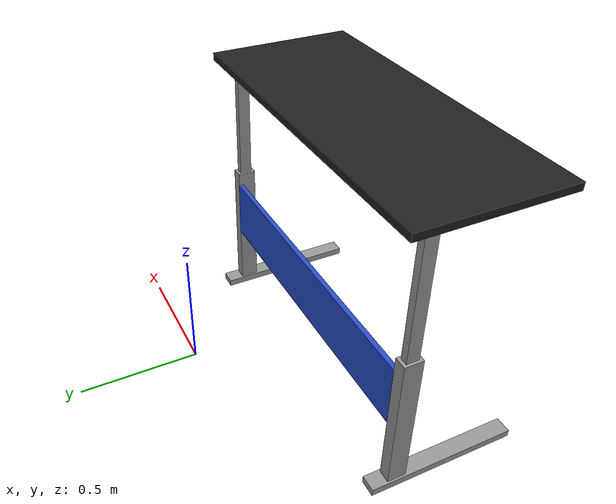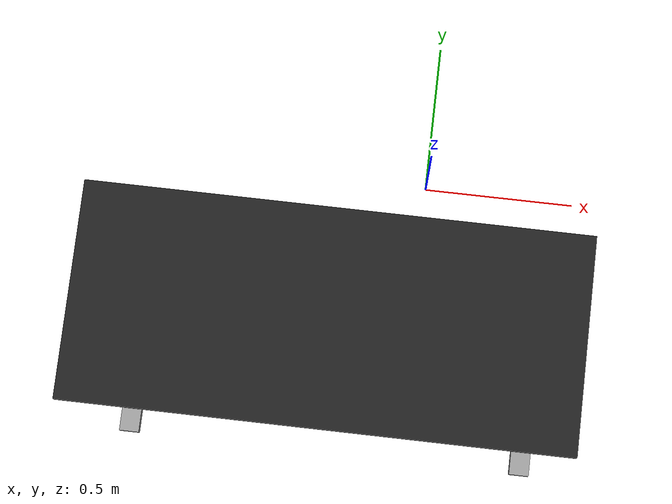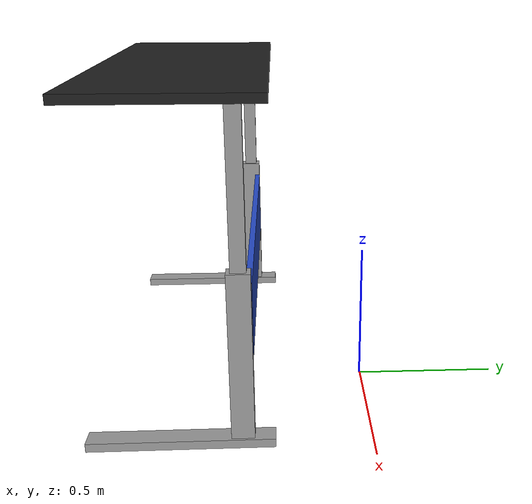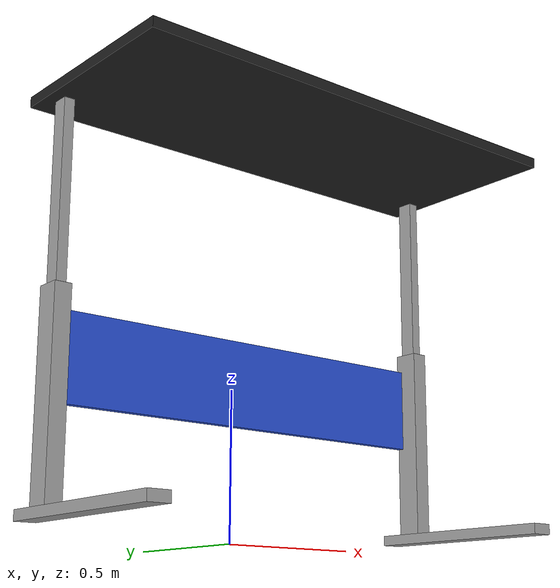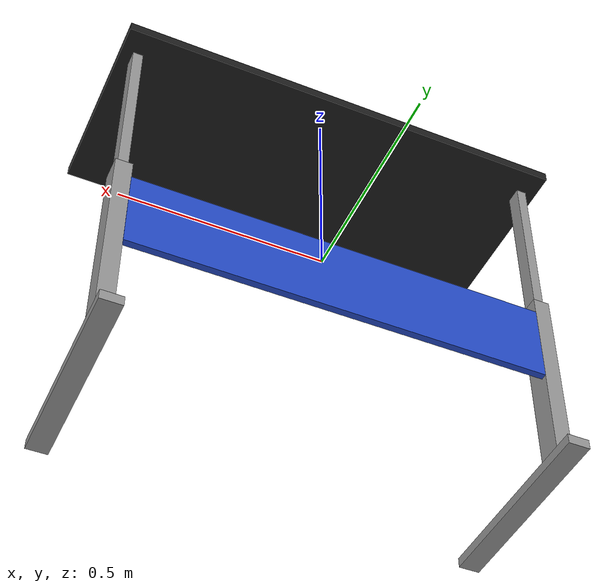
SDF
<?xml version='1.0'?>
<sdf version='1.6'>
  <model name='transcendesk'>
    <!--
    To adjust the height of the table, see note below. Also recompute inertia.
    -->
    <link name='table_base'>
      <pose frame=''>-0.243716 -0.625087 0 0 -0 0</pose>
      <inertial>
        <mass>30</mass>
        <pose frame=''>0 0 0 0 -0 0</pose>
        <inertia>
          <ixx>4.33</ixx>
          <ixy>0</ixy>
          <ixz>0</ixz>
          <iyy>8.325</iyy>
          <iyz>0</iyz>
          <izz>5.8</izz>
        </inertia>
      </inertial>
      <self_collide>0</self_collide>
      <kinematic>0</kinematic>
      <gravity>1</gravity>
      <visual name='right_crossbar'>
        <pose frame=''>0.65 0 0.01 0 -0 0</pose>
        <geometry>
          <box>
            <size>0.065 0.61 0.03</size>
          </box>
        </geometry>
        <material>
          <script>
            <uri>file://media/materials/scripts/gazebo.material</uri>
            <name>Gazebo/Grey</name>
          </script>
          <ambient>0.3 0.3 0.3 1</ambient>
          <diffuse>0.7 0.7 0.7 1</diffuse>
          <specular>0.01 0.01 0.01 1</specular>
          <emissive>0 0 0 1</emissive>
          <shader type='vertex'>
            <normal_map>__default__</normal_map>
          </shader>
        </material>
        <cast_shadows>1</cast_shadows>
        <transparency>0</transparency>
      </visual>
      <visual name='left_crossbar'>
        <pose frame=''>-0.65 0 0.01 0 -0 0</pose>
        <geometry>
          <box>
            <size>0.065 0.61 0.03</size>
          </box>
        </geometry>
        <material>
          <script>
            <uri>file://media/materials/scripts/gazebo.material</uri>
            <name>Gazebo/Grey</name>
          </script>
          <ambient>0.3 0.3 0.3 1</ambient>
          <diffuse>0.7 0.7 0.7 1</diffuse>
          <specular>0.01 0.01 0.01 1</specular>
          <emissive>0 0 0 1</emissive>
          <shader type='vertex'>
            <normal_map>__default__</normal_map>
          </shader>
        </material>
        <cast_shadows>1</cast_shadows>
        <transparency>0</transparency>
      </visual>
      <visual name='bottom_right_leg'>
        <pose frame=''>0.65 0.2 0.31 0 -0 0</pose>
        <geometry>
          <box>
            <size>0.05 0.076 0.58</size>
          </box>
        </geometry>
        <material>
          <script>
            <uri>file://media/materials/scripts/gazebo.material</uri>
            <name>Gazebo/Grey</name>
          </script>
          <ambient>0.3 0.3 0.3 1</ambient>
          <diffuse>0.7 0.7 0.7 1</diffuse>
          <specular>0.01 0.01 0.01 1</specular>
          <emissive>0 0 0 1</emissive>
          <shader type='vertex'>
            <normal_map>__default__</normal_map>
          </shader>
        </material>
        <cast_shadows>1</cast_shadows>
        <transparency>0</transparency>
      </visual>
      <visual name='leg_brace'>
        <pose frame=''>0 0.229 0.42 0 -0 0</pose>
        <geometry>
          <box>
            <size>1.25 0.02 0.25</size>
          </box>
        </geometry>
        <material>
          <script>
            <uri>file://media/materials/scripts/gazebo.material</uri>
            <name>Gazebo/Blue</name>
          </script>
          <ambient>0.3 0.3 0.3 1</ambient>
          <diffuse>0.7 0.7 0.7 1</diffuse>
          <specular>0.01 0.01 0.01 1</specular>
          <emissive>0 0 0 1</emissive>
          <shader type='vertex'>
            <normal_map>__default__</normal_map>
          </shader>
        </material>
        <cast_shadows>1</cast_shadows>
        <transparency>0</transparency>
      </visual>
      <visual name='bottom_left_leg'>
        <pose frame=''>-0.65 0.2 0.31 0 -0 0</pose>
        <geometry>
          <box>
            <size>0.05 0.076 0.58</size>
          </box>
        </geometry>
        <material>
          <script>
            <uri>file://media/materials/scripts/gazebo.material</uri>
            <name>Gazebo/Grey</name>
          </script>
          <ambient>0.3 0.3 0.3 1</ambient>
          <diffuse>0.7 0.7 0.7 1</diffuse>
          <specular>0.01 0.01 0.01 1</specular>
          <emissive>0 0 0 1</emissive>
          <shader type='vertex'>
            <normal_map>__default__</normal_map>
          </shader>
        </material>
        <cast_shadows>1</cast_shadows>
        <transparency>0</transparency>
      </visual>
      <collision name='bottom_left_leg'>
        <laser_retro>0</laser_retro>
        <max_contacts>10</max_contacts>
        <pose frame=''>-0.65 0.2 0.31 0 -0 0</pose>
        <geometry>
          <box>
            <size>0.05 0.076 0.58</size>
          </box>
        </geometry>
        <surface>
          <friction>
            <ode>
              <mu>1</mu>
              <mu2>1</mu2>
              <fdir1>0 0 0</fdir1>
              <slip1>0</slip1>
              <slip2>0</slip2>
            </ode>
            <torsional>
              <coefficient>1</coefficient>
              <patch_radius>0</patch_radius>
              <surface_radius>0</surface_radius>
              <use_patch_radius>1</use_patch_radius>
              <ode>
                <slip>0</slip>
              </ode>
            </torsional>
          </friction>
          <bounce>
            <restitution_coefficient>0</restitution_coefficient>
            <threshold>1e+06</threshold>
          </bounce>
          <contact>
            <collide_without_contact>0</collide_without_contact>
            <collide_without_contact_bitmask>1</collide_without_contact_bitmask>
            <collide_bitmask>1</collide_bitmask>
            <ode>
              <soft_cfm>0</soft_cfm>
              <soft_erp>0.2</soft_erp>
              <kp>1e+13</kp>
              <kd>1</kd>
              <max_vel>0.01</max_vel>
              <min_depth>0</min_depth>
            </ode>
            <bullet>
              <split_impulse>1</split_impulse>
              <split_impulse_penetration_threshold>-0.01</split_impulse_penetration_threshold>
              <soft_cfm>0</soft_cfm>
              <soft_erp>0.2</soft_erp>
              <kp>1e+13</kp>
              <kd>1</kd>
            </bullet>
          </contact>
        </surface>
      </collision>
      <collision name='left_crossbar'>
        <laser_retro>0</laser_retro>
        <max_contacts>10</max_contacts>
        <pose frame=''>-0.65 0 0.01 0 -0 0</pose>
        <geometry>
          <box>
            <size>0.065 0.61 0.03</size>
          </box>
        </geometry>
        <surface>
          <friction>
            <ode>
              <mu>1</mu>
              <mu2>1</mu2>
              <fdir1>0 0 0</fdir1>
              <slip1>0</slip1>
              <slip2>0</slip2>
            </ode>
            <torsional>
              <coefficient>1</coefficient>
              <patch_radius>0</patch_radius>
              <surface_radius>0</surface_radius>
              <use_patch_radius>1</use_patch_radius>
              <ode>
                <slip>0</slip>
              </ode>
            </torsional>
          </friction>
          <bounce>
            <restitution_coefficient>0</restitution_coefficient>
            <threshold>1e+06</threshold>
          </bounce>
          <contact>
            <collide_without_contact>0</collide_without_contact>
            <collide_without_contact_bitmask>1</collide_without_contact_bitmask>
            <collide_bitmask>1</collide_bitmask>
            <ode>
              <soft_cfm>0</soft_cfm>
              <soft_erp>0.2</soft_erp>
              <kp>1e+13</kp>
              <kd>1</kd>
              <max_vel>0.01</max_vel>
              <min_depth>0</min_depth>
            </ode>
            <bullet>
              <split_impulse>1</split_impulse>
              <split_impulse_penetration_threshold>-0.01</split_impulse_penetration_threshold>
              <soft_cfm>0</soft_cfm>
              <soft_erp>0.2</soft_erp>
              <kp>1e+13</kp>
              <kd>1</kd>
            </bullet>
          </contact>
        </surface>
      </collision>
      <collision name='right_crossbar'>
        <laser_retro>0</laser_retro>
        <max_contacts>10</max_contacts>
        <pose frame=''>0.65 0 0.01 0 -0 0</pose>
        <geometry>
          <box>
            <size>0.065 0.61 0.03</size>
          </box>
        </geometry>
        <surface>
          <friction>
            <ode>
              <mu>1</mu>
              <mu2>1</mu2>
              <fdir1>0 0 0</fdir1>
              <slip1>0</slip1>
              <slip2>0</slip2>
            </ode>
            <torsional>
              <coefficient>1</coefficient>
              <patch_radius>0</patch_radius>
              <surface_radius>0</surface_radius>
              <use_patch_radius>1</use_patch_radius>
              <ode>
                <slip>0</slip>
              </ode>
            </torsional>
          </friction>
          <bounce>
            <restitution_coefficient>0</restitution_coefficient>
            <threshold>1e+06</threshold>
          </bounce>
          <contact>
            <collide_without_contact>0</collide_without_contact>
            <collide_without_contact_bitmask>1</collide_without_contact_bitmask>
            <collide_bitmask>1</collide_bitmask>
            <ode>
              <soft_cfm>0</soft_cfm>
              <soft_erp>0.2</soft_erp>
              <kp>1e+13</kp>
              <kd>1</kd>
              <max_vel>0.01</max_vel>
              <min_depth>0</min_depth>
            </ode>
            <bullet>
              <split_impulse>1</split_impulse>
              <split_impulse_penetration_threshold>-0.01</split_impulse_penetration_threshold>
              <soft_cfm>0</soft_cfm>
              <soft_erp>0.2</soft_erp>
              <kp>1e+13</kp>
              <kd>1</kd>
            </bullet>
          </contact>
        </surface>
      </collision>
      <collision name='bottom_right_leg'>
        <laser_retro>0</laser_retro>
        <max_contacts>10</max_contacts>
        <pose frame=''>0.65 0.2 0.31 0 -0 0</pose>
        <geometry>
          <box>
            <size>0.05 0.076 0.58</size>
          </box>
        </geometry>
        <surface>
          <friction>
            <ode>
              <mu>1</mu>
              <mu2>1</mu2>
              <fdir1>0 0 0</fdir1>
              <slip1>0</slip1>
              <slip2>0</slip2>
            </ode>
            <torsional>
              <coefficient>1</coefficient>
              <patch_radius>0</patch_radius>
              <surface_radius>0</surface_radius>
              <use_patch_radius>1</use_patch_radius>
              <ode>
                <slip>0</slip>
              </ode>
            </torsional>
          </friction>
          <bounce>
            <restitution_coefficient>0</restitution_coefficient>
            <threshold>1e+06</threshold>
          </bounce>
          <contact>
            <collide_without_contact>0</collide_without_contact>
            <collide_without_contact_bitmask>1</collide_without_contact_bitmask>
            <collide_bitmask>1</collide_bitmask>
            <ode>
              <soft_cfm>0</soft_cfm>
              <soft_erp>0.2</soft_erp>
              <kp>1e+13</kp>
              <kd>1</kd>
              <max_vel>0.01</max_vel>
              <min_depth>0</min_depth>
            </ode>
            <bullet>
              <split_impulse>1</split_impulse>
              <split_impulse_penetration_threshold>-0.01</split_impulse_penetration_threshold>
              <soft_cfm>0</soft_cfm>
              <soft_erp>0.2</soft_erp>
              <kp>1e+13</kp>
              <kd>1</kd>
            </bullet>
          </contact>
        </surface>
      </collision>
      <collision name='leg_brace'>
        <laser_retro>0</laser_retro>
        <max_contacts>10</max_contacts>
        <pose frame=''>0 0.229 0.42 0 -0 0</pose>
        <geometry>
          <box>
            <size>1.25 0.02 0.25</size>
          </box>
        </geometry>
        <surface>
          <friction>
            <ode>
              <mu>1</mu>
              <mu2>1</mu2>
              <fdir1>0 0 0</fdir1>
              <slip1>0</slip1>
              <slip2>0</slip2>
            </ode>
            <torsional>
              <coefficient>1</coefficient>
              <patch_radius>0</patch_radius>
              <surface_radius>0</surface_radius>
              <use_patch_radius>1</use_patch_radius>
              <ode>
                <slip>0</slip>
              </ode>
            </torsional>
          </friction>
          <bounce>
            <restitution_coefficient>0</restitution_coefficient>
            <threshold>1e+06</threshold>
          </bounce>
          <contact>
            <collide_without_contact>0</collide_without_contact>
            <collide_without_contact_bitmask>1</collide_without_contact_bitmask>
            <collide_bitmask>1</collide_bitmask>
            <ode>
              <soft_cfm>0</soft_cfm>
              <soft_erp>0.2</soft_erp>
              <kp>1e+13</kp>
              <kd>1</kd>
              <max_vel>0.01</max_vel>
              <min_depth>0</min_depth>
            </ode>
            <bullet>
              <split_impulse>1</split_impulse>
              <split_impulse_penetration_threshold>-0.01</split_impulse_penetration_threshold>
              <soft_cfm>0</soft_cfm>
              <soft_erp>0.2</soft_erp>
              <kp>1e+13</kp>
              <kd>1</kd>
            </bullet>
          </contact>
        </surface>
      </collision>
    </link>
    <link name='table_upper'>
      <!--
      To adjust the height of the table, adjust the value of the third
      parameter in the pose frame, z. Also adjust inertia.
      -->
      <pose frame=''>-0.243716 -0.625087 0.48 0 -0 0</pose>
      <inertial>
        <mass>53.5</mass>
        <pose frame=''>0 0 0 0 -0 0</pose>
        <inertia>
          <ixx>5.17741</ixx>
          <ixy>0</ixy>
          <ixz>0</ixz>
          <iyy>4.84375</iyy>
          <iyz>0</iyz>
          <izz>4.84375</izz>
        </inertia>
      </inertial>
      <self_collide>0</self_collide>
      <kinematic>0</kinematic>
      <visual name='upper_right_leg'>
        <pose frame=''>0.65 0.2 0.375 0 -0 0</pose>
        <geometry>
          <box>
            <size>0.03 0.05 0.53</size>
          </box>
        </geometry>
        <material>
          <script>
            <uri>file://media/materials/scripts/gazebo.material</uri>
            <name>Gazebo/Grey</name>
          </script>
          <ambient>0.3 0.3 0.3 1</ambient>
          <diffuse>0.7 0.7 0.7 1</diffuse>
          <specular>0.01 0.01 0.01 1</specular>
          <emissive>0 0 0 1</emissive>
          <shader type='vertex'>
            <normal_map>__default__</normal_map>
          </shader>
        </material>
        <cast_shadows>1</cast_shadows>
        <transparency>0</transparency>
      </visual>
      <visual name='upper_left_leg'>
        <pose frame=''>-0.65 0.2 0.375 0 -0 0</pose>
        <geometry>
          <box>
            <size>0.03 0.05 0.53</size>
          </box>
        </geometry>
        <material>
          <script>
            <uri>file://media/materials/scripts/gazebo.material</uri>
            <name>Gazebo/Grey</name>
          </script>
          <ambient>0.3 0.3 0.3 1</ambient>
          <diffuse>0.7 0.7 0.7 1</diffuse>
          <specular>0.01 0.01 0.01 1</specular>
          <emissive>0 0 0 1</emissive>
          <shader type='vertex'>
            <normal_map>__default__</normal_map>
          </shader>
        </material>
        <cast_shadows>1</cast_shadows>
        <transparency>0</transparency>
      </visual>
      <visual name='tabletop'>
        <pose frame=''>0 0 0.65 0 -0 0</pose>
        <geometry>
          <box>
            <size>1.4 0.6 0.03</size>
          </box>
        </geometry>
        <material>
          <script>
            <uri>file://media/materials/scripts/gazebo.material</uri>
            <name>Gazebo/Black</name>
          </script>
          <ambient>0.2 0.2 0.2 1</ambient>
          <diffuse>0.3 0.3 0.3 1</diffuse>
          <specular>0.01 0.01 0.01 1</specular>
          <emissive>0 0 0 1</emissive>
          <shader type='vertex'>
            <normal_map>__default__</normal_map>
          </shader>
        </material>
        <cast_shadows>1</cast_shadows>
        <transparency>0</transparency>
      </visual>
      <collision name='tabletop'>
        <laser_retro>0</laser_retro>
        <max_contacts>10</max_contacts>
        <pose frame=''>0 0 0.65 0 -0 0</pose>
        <geometry>
          <box>
            <size>1.4 0.6 0.03</size>
          </box>
        </geometry>
        <surface>
          <friction>
            <ode>
              <mu>1</mu>
              <mu2>1</mu2>
              <fdir1>0 0 0</fdir1>
              <slip1>0</slip1>
              <slip2>0</slip2>
            </ode>
            <torsional>
              <coefficient>1</coefficient>
              <patch_radius>0</patch_radius>
              <surface_radius>0</surface_radius>
              <use_patch_radius>1</use_patch_radius>
              <ode>
                <slip>0</slip>
              </ode>
            </torsional>
          </friction>
          <bounce>
            <restitution_coefficient>0</restitution_coefficient>
            <threshold>1e+06</threshold>
          </bounce>
          <contact>
            <collide_without_contact>0</collide_without_contact>
            <collide_without_contact_bitmask>1</collide_without_contact_bitmask>
            <collide_bitmask>1</collide_bitmask>
            <ode>
              <soft_cfm>0</soft_cfm>
              <soft_erp>0.2</soft_erp>
              <kp>1e+13</kp>
              <kd>1</kd>
              <max_vel>0.01</max_vel>
              <min_depth>0</min_depth>
            </ode>
            <bullet>
              <split_impulse>1</split_impulse>
              <split_impulse_penetration_threshold>-0.01</split_impulse_penetration_threshold>
              <soft_cfm>0</soft_cfm>
              <soft_erp>0.2</soft_erp>
              <kp>1e+13</kp>
              <kd>1</kd>
            </bullet>
          </contact>
        </surface>
      </collision>
    </link>
    <!--
    TODO(Lucy.tri): This joint could be used to simulate the way the table's
    height can be adjusted. The limits need to be tuned and other params set.
    -->
    <joint name='table_height' type='prismatic'>
      <parent>table_upper</parent>
      <child>table_base</child>
      <pose frame=''>0 0 0 0 -0 0</pose>
      <axis>
        <xyz>0 0 1</xyz>
        <use_parent_model_frame>0</use_parent_model_frame>
        <limit>
          <lower>-0.3</lower>
          <upper>0</upper>
          <effort>-1</effort>
          <velocity>-1</velocity>
        </limit>
        <dynamics>
          <spring_reference>0</spring_reference>
          <spring_stiffness>0</spring_stiffness>
          <damping>0</damping>
          <friction>0</friction>
        </dynamics>
      </axis>
      <physics>
        <ode>
          <limit>
            <cfm>0</cfm>
            <erp>0.2</erp>
          </limit>
          <suspension>
            <cfm>0</cfm>
            <erp>0.2</erp>
          </suspension>
        </ode>
      </physics>
    </joint>
    <static>1</static>
    <allow_auto_disable>1</allow_auto_disable>
  </model>
</sdf>
